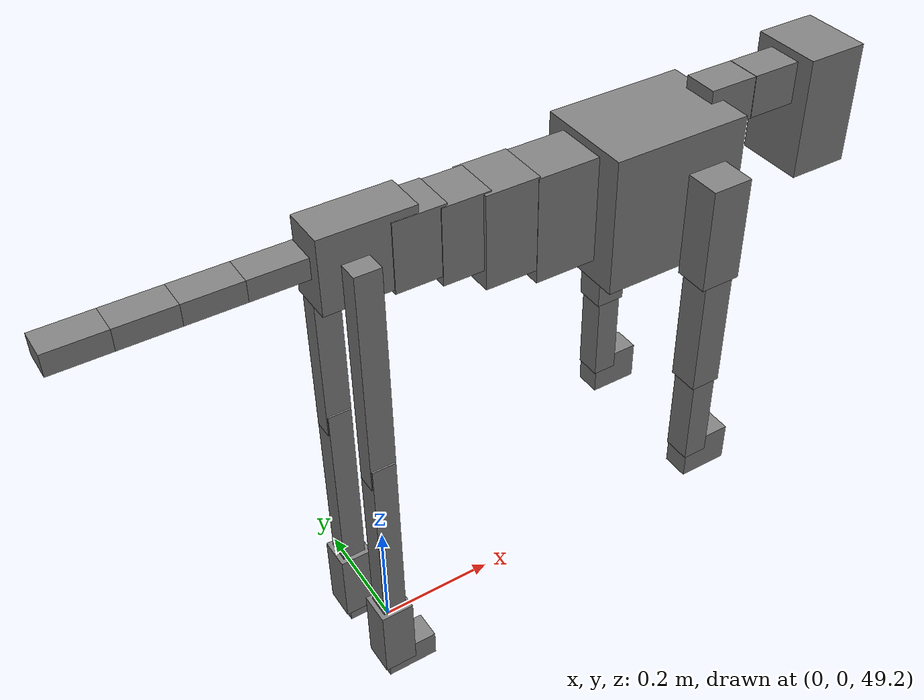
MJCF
<mujoco model="dog">

    <default>
        <joint armature="0.02" stiffness="1" damping="0.2" limited="true"/>
        <geom condim="3" friction="1 0.05 0.05" margin="0.01"/>
        <motor ctrllimited="true" ctrlrange="-1.0 1.0" forcelimited="true" gear="50"/>
    </default>

    <compiler inertiafromgeom="true" angle="radian"/>

    <option timestep="0.016" iterations="50" tolerance="1e-10" solver="Newton" jacobian="dense" cone="pyramidal"/>

    <size nconmax="20000" njmax="60000" nstack="5000000"/>
    <visual>
        <map force="0.1" zfar="30"/>
        <rgba haze="0.15 0.25 0.35 1"/>
        <quality shadowsize="2048"/>
        <global offwidth="800" offheight="800"/>
    </visual>

    <asset>
        <texture type="skybox" builtin="gradient" rgb1="0.3 0.5 0.7" rgb2="0 0 0" width="512" height="512"/>
        <texture name="texplane" type="2d" builtin="checker" rgb1=".2 .3 .4" rgb2=".1 0.15 0.2" width="512" height="512"
                 mark="cross" markrgb=".8 .8 .8"/>
        <texture name="texgeom" type="cube" builtin="flat" mark="cross" width="127" height="1278" rgb1="0.8 0.6 0.4"
                 rgb2="0.8 0.6 0.4" markrgb="1 1 1" random="0.01"/>

        <material name="matplane" reflectance="0.3" texture="texplane" texrepeat="1 1" texuniform="true"/>
        <material name="matgeom" texture="texgeom" texuniform="true" rgba="0.8 0.6 .4 1"/>
    </asset>

    <worldbody>
        <geom name="floor" pos="0 0 0" size="0 0 .25" type="plane" material="matplane" condim="3"/>

        <light directional="false" diffuse=".2 .2 .2" specular="0 0 0" pos="0 0 5" dir="0 0 -1" castshadow="false"/>
        <light mode="targetbodycom" target="torso" directional="false" diffuse=".8 .8 .8" specular="0.3 0.3 0.3"
               pos="0 0 4.0" dir="0 0 -1"/>

        <body name="root" pos="0 0 50">
            <freejoint name="root_1"/>
            <geom type="box" pos="0 0 -0.02" size="0.0774  0.0358  0.063" density="2030"/>

            <body name="spine1" pos="0.054 0 0">
                <joint name="spine1_y" axis="0 1 0" range="0 0.7" limited="true"/>
                <geom type="box" pos="0.02375 0 -0.03" size="0.04375  0.0375  0.05985" density="2030"/>

                <body name="spine2" pos="0.0612 0 0">
                    <joint name="spine2_y" axis="0 1 0" range="-0.15 0.15" limited="true"/>
                    <geom type="box" pos="0.03555  0  -0.04" size="0.04055  0.039  0.06615" density="2030"/>

                    <body name="spine3" pos="0.0730 0 0">
                        <joint name="spine3_y" axis="0 1 0" range="-0.15 0.15" limited="true"/>
                        <geom type="box" pos="0.03555  0  -0.057" size="0.04555  0.0445  0.081" density="2030"/>

                        <body name="spine4" pos="0.0780 0 0">
                            <joint name="spine4_y" axis="0 1 0" range="-0.15 0.15" limited="true"/>
                            <geom type="box" pos="0.05265  0  -0.07" size="0.05265  0.045  0.09135" density="2030"/>

                            <body name="torso" pos="0.1082 0 0">
                                <joint name="torso_y" axis="0 1 0" range="-0.15 0.15" limited="true"/>
                                <geom type="box" pos="0.11925  0  -0.085" size="0.11925  0.085  0.11745"
                                      density="2030"/>

                                <body name="neck1" pos="0.2160  0   0.0180">
                                    <joint name="neck1_y" axis="0 1 0" range="-1.2  -1" limited="true"/>
                                    <geom type="box" pos="0.0423  0  0" size="0.0423  0.03  0.036" density="2325"/>

                                    <body name="neck2" pos="0.0853  0  0">
                                        <joint name="neck2_y" axis="0 1 0" range="0.1  0" limited="true"/>
                                        <geom type="box" pos="0.0423  0  0" size="0.0423  0.03  0.036" density="2325"/>

                                        <body name="head" pos="0.0853  0  0">
                                            <joint name="head_y" axis="0 1 0" range="-0.3  -0.2" limited="true"/>
                                            <geom type="box" pos="0.0531  0  -0.055" size="0.0531  0.06  0.1044"
                                                  density="4030"/>

                                        </body>
                                    </body>
                                </body>

                                <body name="front_shoulder" pos="0.156  0   -0.0480">
                                    <joint name="front_shoulder_y" axis="0 1 0" range="-1 1.5" limited="true"/>
                                    <geom type="box" pos="0 0.13 -0.0625" size="0.0345  0.0295  0.0892" density="1158"/>
                                    <geom type="box" pos="0 -0.13 -0.0625" size="0.0345  0.0295  0.0892"
                                          density="1158"/>

                                    <body name="front_elbow" pos="0  0  -0.1251">
                                        <joint name="front_elbow_y" axis="0 1 0" range="-2 0" limited="true"/>
                                        <geom type="box" pos="0 0.13 -0.1171" size="0.0260  0.0266  0.1171"
                                              density="1081"/>
                                        <geom type="box" pos="0 -0.13 -0.1171" size="0.0260  0.0266  0.1171"
                                              density="1081"/>

                                        <body name="front_wrist" pos="0  0  -0.2342">
                                            <joint name="front_wrist_y" axis="0 1 0" range="-0.2 0" limited="true"/>
                                            <geom type="box" pos="0 0.13 -0.0737" size="0.0214  0.0238  0.0868"
                                                  density="1664"/>
                                            <geom type="box" pos="0 -0.13 -0.0737" size="0.0214  0.0238  0.0868"
                                                  density="1664"/>

                                            <body name="front_finger_end" pos="0  0  -0.1474">
                                                <joint name="front_finger_y" axis="0 1 0" range="-0.4 1"
                                                       limited="true"/>
                                                <geom type="box" pos="0.0233  0.13  -0.0202"
                                                      size="0.0427  0.0233  0.0352" density="1515"/>
                                                <geom type="box" pos="0.0233  -0.13  -0.0202"
                                                      size="0.0427  0.0233  0.0352" density="1515"/>

                                            </body>

                                        </body>
                                    </body>
                                </body>

                            </body>
                        </body>
                    </body>
                </body>
            </body>

            <body name="back_hip" pos="-0.03 0 -0.018">
                <joint name="back_hip_y" axis="0 1 0" range="-1.5 0.3" limited="true"/>
                <geom type="box" pos="0 0.07 -0.1746" size="0.0214  0.0168  0.1974" density="1154"/>
                <geom type="box" pos="0 -0.07 -0.1746" size="0.0214  0.0168  0.1974" density="1154"/>

                <body name="back_knee" pos="0  0  -0.3491">
                    <joint name="back_knee_y" axis="0 1 0" range="0 2.8" limited="true"/>
                    <geom type="box" pos="0 0.07 -0.1609" size="0.0200  0.0197  0.1764" density="1227"/>
                    <geom type="box" pos="0 -0.07 -0.1609" size="0.0200  0.0197  0.1764" density="1227"/>

                    <body name="back_ankle" pos="0  0  -0.3218">
                        <joint name="back_ankle_y" axis="0 1 0" range="-2.2 0" limited="true"/>
                        <geom type="box" pos="0 0.07 -0.0551" size="0.0281  0.0281  0.0664" density="1284"/>
                        <geom type="box" pos="0 -0.07 -0.0551" size="0.0281  0.0281  0.0664" density="1284"/>

                        <body name="back_toe_end" pos="0  0  -0.1103">
                            <joint name="back_toe_y" axis="0 1 0" range="-0.4 1" limited="true"/>
                            <geom type="box" pos="0.0243  0.07  -0.0088" size="0.0445  0.0243  0.0238" density="1515"/>
                            <geom type="box" pos="0.0243  -0.07  -0.0088" size="0.0445  0.0243  0.0238" density="1515"/>

                        </body>
                    </body>
                </body>
            </body>

            <body name="tail1" pos="-0.074 0 -0.006">
                <joint name="tail1_y" axis="0 1 0" range="-0.2 0.2" limited="true"/>
                <geom type="box" pos="-0.0536  0  0" size="0.045  0.025  0.0175" density="1587"/>

                <body name="tail2" pos="-0.09 0 0">
                    <joint name="tail2_y" axis="0 1 0" range="-0.2 0.2" limited="true"/>
                    <geom type="box" pos="-0.0536  0  0" size="0.045  0.025  0.0175" density="1587"/>

                    <body name="tail3" pos="-0.09 0 0">
                        <joint name="tail3_y" axis="0 1 0" range="-0.2 0.2" limited="true"/>
                        <geom type="box" pos="-0.0536  0  0" size="0.045  0.025  0.0175" density="1587"/>

                        <body name="tail4" pos="-0.09 0 0">
                            <joint name="tail4_y" axis="0 1 0" range="-0.2 0.2" limited="true"/>
                            <geom type="box" pos="-0.0536  0  0" size="0.045  0.025  0.0175" density="1587"/>

                        </body>
                    </body>
                </body>
            </body>
        </body>
    </worldbody>

    <actuator>
        <motor joint="spine1_y" forcerange="-150 150     "/>
        <motor joint="spine2_y" forcerange="-150 150     "/>
        <motor joint="spine3_y" forcerange="-150 150     "/>
        <motor joint="spine4_y" forcerange="-150 150     "/>
        <motor joint="torso_y" forcerange="-150 150     "/>
        <motor joint="neck1_y" forcerange="-100 100       "/>
        <motor joint="neck2_y" forcerange="-100 100       "/>
        <motor joint="head_y" forcerange="-150 150       "/>
        <motor joint="front_shoulder_y" forcerange="-121.36 175.16"/>
        <motor joint="front_elbow_y" forcerange="-185.43 107.92"/>
        <motor joint="front_wrist_y" forcerange="-83.26 107.29"/>
        <motor joint="front_finger_y" forcerange="-60.40 23.73"/>
        <motor joint="back_hip_y" forcerange="-202.62 220.84"/>
        <motor joint="back_knee_y" forcerange="-267.49 219.27"/>
        <motor joint="back_angle_y" forcerange="-234.30 115.32"/>
        <motor joint="back_toe_y" forcerange="-26.13 88.17"/>
        <motor joint="tail1_y" forcerange="-50 50     "/>
        <motor joint="tail2_y" forcerange="-50 50     "/>
        <motor joint="tail3_y" forcerange="-50 50     "/>
        <motor joint="tail4_y" forcerange="-50 50     "/>
    </actuator>
</mujoco>
